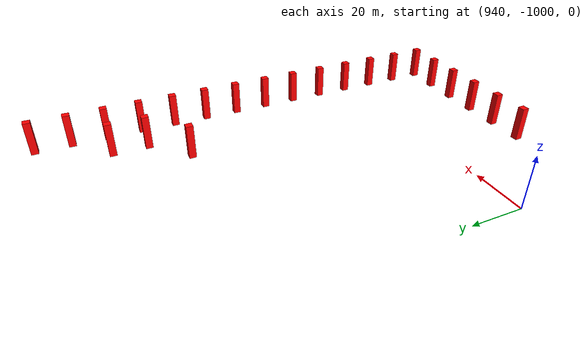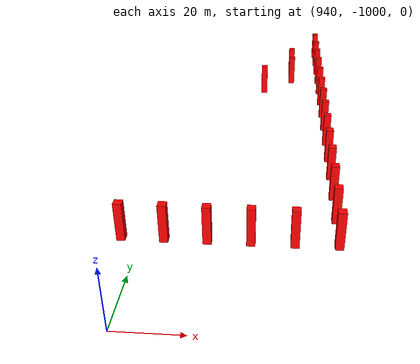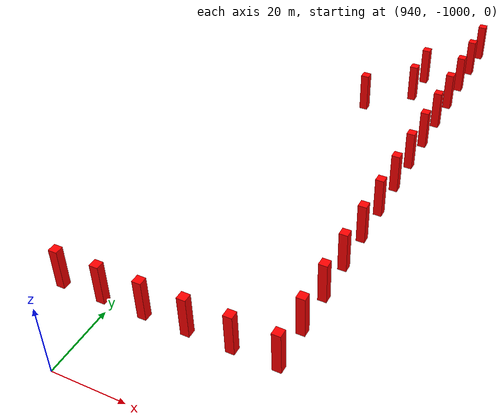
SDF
<sdf version="1.9">
 <world name="default">
  <model name="start_area_21678">
   <static>true</static>
   <pose>995.0 -865.0 30 0 0 0</pose>
   <link name="start_area_link_21678">
    <collision name="start_area_collision_21678"><geometry><box><size>2 2 20</size></box></geometry></collision>
    <visual name="start_area_visual_21678">
     <geometry><box><size>2 2 10</size></box></geometry>
     <material><ambient>1 0 0 1</ambient><diffuse>1 0 0 1</diffuse><specular>0.1 0.1 0.1 1</specular></material>
    </visual>
   </link>
  </model>
  <model name="start_area_21819">
   <static>true</static>
   <pose>995.0 -875.0 30 0 0 0</pose>
   <link name="start_area_link_21819">
    <collision name="start_area_collision_21819"><geometry><box><size>2 2 20</size></box></geometry></collision>
    <visual name="start_area_visual_21819">
     <geometry><box><size>2 2 10</size></box></geometry>
     <material><ambient>1 0 0 1</ambient><diffuse>1 0 0 1</diffuse><specular>0.1 0.1 0.1 1</specular></material>
    </visual>
   </link>
  </model>
  <model name="start_area_21958">
   <static>true</static>
   <pose>995.0 -885.0 30 0 0 0</pose>
   <link name="start_area_link_21958">
    <collision name="start_area_collision_21958"><geometry><box><size>2 2 20</size></box></geometry></collision>
    <visual name="start_area_visual_21958">
     <geometry><box><size>2 2 10</size></box></geometry>
     <material><ambient>1 0 0 1</ambient><diffuse>1 0 0 1</diffuse><specular>0.1 0.1 0.1 1</specular></material>
    </visual>
   </link>
  </model>
  <model name="start_area_22096">
   <static>true</static>
   <pose>995.0 -895.0 30 0 0 0</pose>
   <link name="start_area_link_22096">
    <collision name="start_area_collision_22096"><geometry><box><size>2 2 20</size></box></geometry></collision>
    <visual name="start_area_visual_22096">
     <geometry><box><size>2 2 10</size></box></geometry>
     <material><ambient>1 0 0 1</ambient><diffuse>1 0 0 1</diffuse><specular>0.1 0.1 0.1 1</specular></material>
    </visual>
   </link>
  </model>
  <model name="start_area_22229">
   <static>true</static>
   <pose>995.0 -905.0 30 0 0 0</pose>
   <link name="start_area_link_22229">
    <collision name="start_area_collision_22229"><geometry><box><size>2 2 20</size></box></geometry></collision>
    <visual name="start_area_visual_22229">
     <geometry><box><size>2 2 10</size></box></geometry>
     <material><ambient>1 0 0 1</ambient><diffuse>1 0 0 1</diffuse><specular>0.1 0.1 0.1 1</specular></material>
    </visual>
   </link>
  </model>
  <model name="start_area_22356">
   <static>true</static>
   <pose>995.0 -915.0 30 0 0 0</pose>
   <link name="start_area_link_22356">
    <collision name="start_area_collision_22356"><geometry><box><size>2 2 20</size></box></geometry></collision>
    <visual name="start_area_visual_22356">
     <geometry><box><size>2 2 10</size></box></geometry>
     <material><ambient>1 0 0 1</ambient><diffuse>1 0 0 1</diffuse><specular>0.1 0.1 0.1 1</specular></material>
    </visual>
   </link>
  </model>
  <model name="start_area_22487">
   <static>true</static>
   <pose>995.0 -925.0 30 0 0 0</pose>
   <link name="start_area_link_22487">
    <collision name="start_area_collision_22487"><geometry><box><size>2 2 20</size></box></geometry></collision>
    <visual name="start_area_visual_22487">
     <geometry><box><size>2 2 10</size></box></geometry>
     <material><ambient>1 0 0 1</ambient><diffuse>1 0 0 1</diffuse><specular>0.1 0.1 0.1 1</specular></material>
    </visual>
   </link>
  </model>
  <model name="start_area_22619">
   <static>true</static>
   <pose>995.0 -935.0 30 0 0 0</pose>
   <link name="start_area_link_22619">
    <collision name="start_area_collision_22619"><geometry><box><size>2 2 20</size></box></geometry></collision>
    <visual name="start_area_visual_22619">
     <geometry><box><size>2 2 10</size></box></geometry>
     <material><ambient>1 0 0 1</ambient><diffuse>1 0 0 1</diffuse><specular>0.1 0.1 0.1 1</specular></material>
    </visual>
   </link>
  </model>
  <model name="start_area_22763">
   <static>true</static>
   <pose>995.0 -945.0 30 0 0 0</pose>
   <link name="start_area_link_22763">
    <collision name="start_area_collision_22763"><geometry><box><size>2 2 20</size></box></geometry></collision>
    <visual name="start_area_visual_22763">
     <geometry><box><size>2 2 10</size></box></geometry>
     <material><ambient>1 0 0 1</ambient><diffuse>1 0 0 1</diffuse><specular>0.1 0.1 0.1 1</specular></material>
    </visual>
   </link>
  </model>
  <model name="start_area_22907">
   <static>true</static>
   <pose>995.0 -955.0 30 0 0 0</pose>
   <link name="start_area_link_22907">
    <collision name="start_area_collision_22907"><geometry><box><size>2 2 20</size></box></geometry></collision>
    <visual name="start_area_visual_22907">
     <geometry><box><size>2 2 10</size></box></geometry>
     <material><ambient>1 0 0 1</ambient><diffuse>1 0 0 1</diffuse><specular>0.1 0.1 0.1 1</specular></material>
    </visual>
   </link>
  </model>
  <model name="start_area_23055">
   <static>true</static>
   <pose>995.0 -965.0 30 0 0 0</pose>
   <link name="start_area_link_23055">
    <collision name="start_area_collision_23055"><geometry><box><size>2 2 20</size></box></geometry></collision>
    <visual name="start_area_visual_23055">
     <geometry><box><size>2 2 10</size></box></geometry>
     <material><ambient>1 0 0 1</ambient><diffuse>1 0 0 1</diffuse><specular>0.1 0.1 0.1 1</specular></material>
    </visual>
   </link>
  </model>
  <model name="start_area_23191">
   <static>true</static>
   <pose>995.0 -975.0 30 0 0 0</pose>
   <link name="start_area_link_23191">
    <collision name="start_area_collision_23191"><geometry><box><size>2 2 20</size></box></geometry></collision>
    <visual name="start_area_visual_23191">
     <geometry><box><size>2 2 10</size></box></geometry>
     <material><ambient>1 0 0 1</ambient><diffuse>1 0 0 1</diffuse><specular>0.1 0.1 0.1 1</specular></material>
    </visual>
   </link>
  </model>
  <model name="start_area_23335">
   <static>true</static>
   <pose>995.0 -985.0 30 0 0 0</pose>
   <link name="start_area_link_23335">
    <collision name="start_area_collision_23335"><geometry><box><size>2 2 20</size></box></geometry></collision>
    <visual name="start_area_visual_23335">
     <geometry><box><size>2 2 10</size></box></geometry>
     <material><ambient>1 0 0 1</ambient><diffuse>1 0 0 1</diffuse><specular>0.1 0.1 0.1 1</specular></material>
    </visual>
   </link>
  </model>
  <model name="start_area_23472">
   <static>true</static>
   <pose>945.0 -995.0 30 0 0 0</pose>
   <link name="start_area_link_23472">
    <collision name="start_area_collision_23472"><geometry><box><size>2 2 20</size></box></geometry></collision>
    <visual name="start_area_visual_23472">
     <geometry><box><size>2 2 10</size></box></geometry>
     <material><ambient>1 0 0 1</ambient><diffuse>1 0 0 1</diffuse><specular>0.1 0.1 0.1 1</specular></material>
    </visual>
   </link>
  </model>
  <model name="start_area_23473">
   <static>true</static>
   <pose>955.0 -995.0 30 0 0 0</pose>
   <link name="start_area_link_23473">
    <collision name="start_area_collision_23473"><geometry><box><size>2 2 20</size></box></geometry></collision>
    <visual name="start_area_visual_23473">
     <geometry><box><size>2 2 10</size></box></geometry>
     <material><ambient>1 0 0 1</ambient><diffuse>1 0 0 1</diffuse><specular>0.1 0.1 0.1 1</specular></material>
    </visual>
   </link>
  </model>
  <model name="start_area_23474">
   <static>true</static>
   <pose>965.0 -995.0 30 0 0 0</pose>
   <link name="start_area_link_23474">
    <collision name="start_area_collision_23474"><geometry><box><size>2 2 20</size></box></geometry></collision>
    <visual name="start_area_visual_23474">
     <geometry><box><size>2 2 10</size></box></geometry>
     <material><ambient>1 0 0 1</ambient><diffuse>1 0 0 1</diffuse><specular>0.1 0.1 0.1 1</specular></material>
    </visual>
   </link>
  </model>
  <model name="start_area_23475">
   <static>true</static>
   <pose>975.0 -995.0 30 0 0 0</pose>
   <link name="start_area_link_23475">
    <collision name="start_area_collision_23475"><geometry><box><size>2 2 20</size></box></geometry></collision>
    <visual name="start_area_visual_23475">
     <geometry><box><size>2 2 10</size></box></geometry>
     <material><ambient>1 0 0 1</ambient><diffuse>1 0 0 1</diffuse><specular>0.1 0.1 0.1 1</specular></material>
    </visual>
   </link>
  </model>
  <model name="start_area_23476">
   <static>true</static>
   <pose>985.0 -995.0 30 0 0 0</pose>
   <link name="start_area_link_23476">
    <collision name="start_area_collision_23476"><geometry><box><size>2 2 20</size></box></geometry></collision>
    <visual name="start_area_visual_23476">
     <geometry><box><size>2 2 10</size></box></geometry>
     <material><ambient>1 0 0 1</ambient><diffuse>1 0 0 1</diffuse><specular>0.1 0.1 0.1 1</specular></material>
    </visual>
   </link>
  </model>
  <model name="start_area_23477">
   <static>true</static>
   <pose>995.0 -995.0 30 0 0 0</pose>
   <link name="start_area_link_23477">
    <collision name="start_area_collision_23477"><geometry><box><size>2 2 20</size></box></geometry></collision>
    <visual name="start_area_visual_23477">
     <geometry><box><size>2 2 10</size></box></geometry>
     <material><ambient>1 0 0 1</ambient><diffuse>1 0 0 1</diffuse><specular>0.1 0.1 0.1 1</specular></material>
    </visual>
   </link>
  </model>
  <model name="start_area_21957">
   <static>true</static>
   <pose>985.0 -885.0 30 0 0 0</pose>
   <link name="start_area_link_21957">
    <collision name="start_area_collision_21957"><geometry><box><size>2 2 20</size></box></geometry></collision>
    <visual name="start_area_visual_21957">
     <geometry><box><size>2 2 10</size></box></geometry>
     <material><ambient>1 0 0 1</ambient><diffuse>1 0 0 1</diffuse><specular>0.1 0.1 0.1 1</specular></material>
    </visual>
   </link>
  </model>
  <model name="start_area_22095">
   <static>true</static>
   <pose>985.0 -895.0 30 0 0 0</pose>
   <link name="start_area_link_22095">
    <collision name="start_area_collision_22095"><geometry><box><size>2 2 20</size></box></geometry></collision>
    <visual name="start_area_visual_22095">
     <geometry><box><size>2 2 10</size></box></geometry>
     <material><ambient>1 0 0 1</ambient><diffuse>1 0 0 1</diffuse><specular>0.1 0.1 0.1 1</specular></material>
    </visual>
   </link>
  </model>
  <model name="start_area_22227">
   <static>true</static>
   <pose>975.0 -905.0 30 0 0 0</pose>
   <link name="start_area_link_22227">
    <collision name="start_area_collision_22227"><geometry><box><size>2 2 20</size></box></geometry></collision>
    <visual name="start_area_visual_22227">
     <geometry><box><size>2 2 10</size></box></geometry>
     <material><ambient>1 0 0 1</ambient><diffuse>1 0 0 1</diffuse><specular>0.1 0.1 0.1 1</specular></material>
    </visual>
   </link>
  </model>
 </world>
</sdf>
